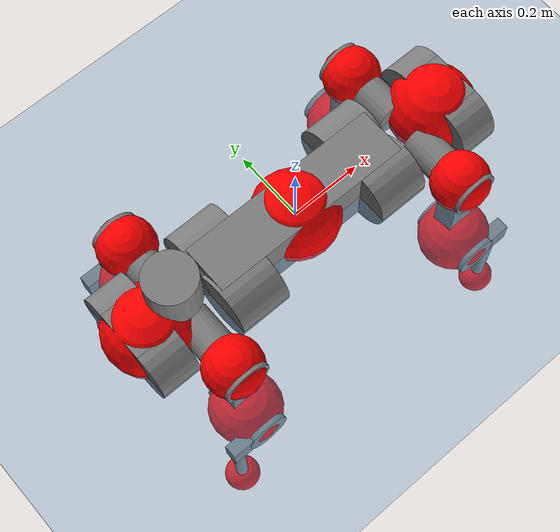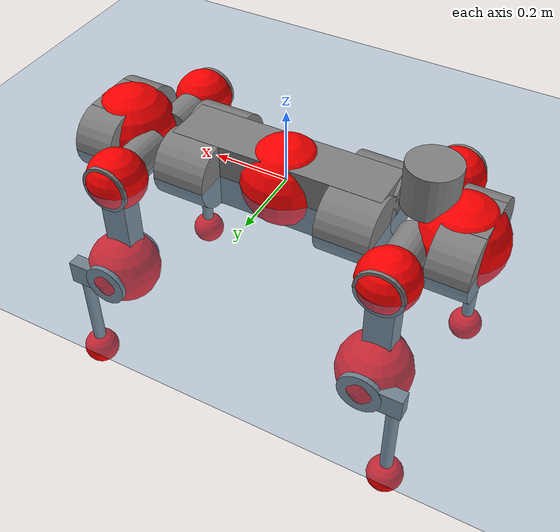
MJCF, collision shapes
<mujoco model="anymal_c">
  <compiler angle="radian" assetdir="assets" balanceinertia="true" inertiafromgeom="false"/>

  <option timestep="0.005" density="1.2" viscosity="2e-05"/>

  <size nkey="1"/>

  <visual>
    <quality shadowsize="8192"/>
    <map shadowclip="0.5"/>
  </visual>

  <default>
    <default class="/">
      <material specular="0" shininess="0.25"/>
      <geom contype="0" conaffinity="0" group="1" solref="-1000 -80"/>
      <site size="0.01 0.005 0.005" group="5"/>
      <general forcelimited="true" forcerange="-80 80" biastype="affine" gainprm="80" biasprm="0 -80 -2"/>
      <default class="anymal_c">
        <joint armature="0.01" damping="0.01" frictionloss="0.1"/>
        <default class="visual">
          <geom type="mesh" group="2"/>
          <default class="visual_zflip"/>
        </default>
        <default class="collision">
          <geom type="cylinder" group="3"/>
          <default class="foot">
            <geom size="0.03 0 0" type="sphere" condim="6" priority="1" friction="0.8 0.02 0.01" solimp="0.015 1 0.03"/>
          </default>
        </default>
      </default>
      <default class="reward_collision_sphere">
        <geom group="5" rgba="1 0 0 1"/>
      </default>
    </default>
  </default>

  <asset>
    <texture type="skybox" colorspace="auto" name="//unnamed_texture_0" builtin="gradient" rgb1="0.95 0.95 0.95" rgb2="0.95 0.95 0.95" width="100" height="600"/>
    <texture type="2d" colorspace="auto" name="texplane" builtin="checker" rgb1="0.345 0.575 0.748" rgb2="0.345 0.575 0.748" markrgb="1 1 1" width="512" height="512"/>
    <texture type="2d" colorspace="linear" name="base" file="base.png"/>
    <texture type="2d" colorspace="linear" name="top_shell" file="top_shell.png"/>
    <texture type="2d" colorspace="linear" name="bottom_shell" file="bottom_shell.png"/>
    <texture type="2d" colorspace="linear" name="remote" file="remote.png"/>
    <texture type="2d" colorspace="linear" name="hatch" file="hatch.png"/>
    <texture type="2d" colorspace="linear" name="handle" file="handle.png"/>
    <texture type="2d" colorspace="linear" name="face" file="face.png"/>
    <texture type="2d" colorspace="linear" name="battery" file="battery.png"/>
    <texture type="2d" colorspace="linear" name="lidar_cage" file="lidar_cage.png"/>
    <texture type="2d" colorspace="linear" name="depth_camera" file="depth_camera.png"/>
    <texture type="2d" colorspace="linear" name="wide_angle_camera" file="wide_angle_camera.png"/>
    <texture type="2d" colorspace="linear" name="lidar" file="lidar.png"/>
    <texture type="2d" colorspace="linear" name="drive" file="drive.png"/>
    <texture type="2d" colorspace="linear" name="hip_l" file="hip_l.png"/>
    <texture type="2d" colorspace="linear" name="shank_l" file="shank_l.png"/>
    <texture type="2d" colorspace="linear" name="foot" file="foot.png"/>
    <texture type="2d" colorspace="linear" name="thigh" file="thigh.png"/>
    <texture type="2d" colorspace="linear" name="shank_r" file="shank_r.png"/>
    <texture type="2d" colorspace="linear" name="hip_r" file="hip_r.png"/>
    <material name="MatPlane" class="/" texture="texplane" texuniform="true" texrepeat="2 2" specular="0.9" shininess="0.5"/>
    <material name="black_plastic" class="/" rgba="0.007 0.007 0.007 1"/>
    <material name="green" class="/" rgba="0.052 0.178 0.033 1"/>
    <material name="red" class="/" rgba="0.178 0.006 0.005 1"/>
    <material name="yellow" class="/" rgba="0.178 0.119 0.006 1"/>
    <material name="lwl" class="/" rgba="0.8 0.8 0.8 1"/>
    <material name="base" class="/" texture="base"/>
    <material name="top_shell" class="/" texture="top_shell"/>
    <material name="bottom_shell" class="/" texture="bottom_shell"/>
    <material name="hip_l" class="/" texture="hip_l"/>
    <material name="thigh" class="/" texture="thigh"/>
    <material name="shank_l" class="/" texture="shank_l"/>
    <material name="foot" class="/" texture="foot"/>
    <material name="hip_r" class="/" texture="hip_r"/>
    <material name="shank" class="/" texture="shank_r"/>
    <material name="hatch" class="/" texture="hatch"/>
    <material name="remote" class="/" texture="remote"/>
    <material name="handle" class="/" texture="handle"/>
    <material name="face" class="/" texture="face"/>
    <material name="depth_camera" class="/" texture="depth_camera"/>
    <material name="wide_angle_camera" class="/" texture="wide_angle_camera"/>
    <material name="battery" class="/" texture="battery"/>
    <material name="lidar_cage" class="/" texture="lidar_cage"/>
    <material name="lidar" class="/" texture="lidar"/>
    <material name="drive" class="/" texture="drive"/>
    <mesh name="base_0" class="/" file="base_0.obj"/>
    <mesh name="base_1" class="/" file="base_1.obj"/>
    <mesh name="base_2" class="/" file="base_2.obj"/>
    <mesh name="base_3" class="/" file="base_3.obj"/>
    <mesh name="base_4" class="/" file="base_4.obj"/>
    <mesh name="base_5" class="/" file="base_5.obj"/>
    <mesh name="top_shell" class="/" file="top_shell.obj"/>
    <mesh name="bottom_shell" class="/" file="bottom_shell.obj"/>
    <mesh name="remote" class="/" file="remote.obj"/>
    <mesh name="handle" class="/" file="handle.obj"/>
    <mesh name="face" class="/" file="face.obj"/>
    <mesh name="wide_angle_camera" class="/" file="wide_angle_camera.obj"/>
    <mesh name="depth_camera" class="/" file="depth_camera.obj"/>
    <mesh name="battery" class="/" file="battery.obj"/>
    <mesh name="lidar_cage" class="/" file="lidar_cage.obj"/>
    <mesh name="lidar" class="/" file="lidar.obj"/>
    <mesh name="drive" class="/" file="drive.obj"/>
    <mesh name="hip_l" class="/" file="hip_l.obj"/>
    <mesh name="thigh" class="/" file="thigh.obj"/>
    <mesh name="shank_l" class="/" file="shank_l.obj"/>
    <mesh name="foot" class="/" file="foot.obj"/>
    <mesh name="hip_r" class="/" file="hip_r.obj"/>
    <mesh name="hatch" class="/" file="hatch.obj"/>
    <mesh name="shank_r" class="/" file="shank_r.obj"/>
  </asset>

  <worldbody>
    <geom name="floor" class="/" size="100 100 0.125" type="plane" group="0" material="MatPlane"/>
    <light name="toplight_shadow" class="/" pos="0 0 5" dir="0.0990148 0.0990148 -0.990148" type="directional" ambient="0.04 0.04 0.04" diffuse="0.55 0.55 0.55" specular="0.12 0.12 0.12"/>
    <light name="toplight_fill" class="/" pos="0 0 5" dir="0.0990148 0.0990148 -0.990148" type="directional" castshadow="false" ambient="0.04 0.04 0.04" diffuse="0.3 0.3 0.3" specular="0.08 0.08 0.08"/>
    <body name="trunk" childclass="anymal_c" pos="2.51288e-05 -4.60095e-06 0.000721076" quat="1 3.2337e-05 2.16863e-05 -7.32957e-05">
      <inertial pos="0.00212031 0.000489751 0.0473912" quat="0.499917 0.500091 0.49996 0.500033" mass="18.2627" diaginertia="0.72831 0.449228 0.198059"/>
      <joint name="//unnamed_joint_0" type="free" armature="0" damping="0" frictionloss="0"/>
      <geom name="//unnamed_geom_1" class="visual" material="green" mesh="base_0"/>
      <geom name="//unnamed_geom_2" class="visual" material="yellow" mesh="base_1"/>
      <geom name="//unnamed_geom_3" class="visual" material="red" mesh="base_2"/>
      <geom name="//unnamed_geom_4" class="visual" material="black_plastic" mesh="base_3"/>
      <geom name="//unnamed_geom_5" class="visual" material="lwl" mesh="base_4"/>
      <geom name="//unnamed_geom_6" class="visual" material="base" mesh="base_5"/>
      <geom name="trunk_1" class="collision" size="0.284052 0.0685644 0.0881542" type="box"/>
      <geom name="trunk_2" class="collision" size="0.0881542 0.0710131" pos="0.222787 0.0654588 0" quat="0.707107 0 0.707107 0"/>
      <geom name="trunk_3" class="collision" size="0.0881542 0.0710131" pos="-0.222787 0.0654588 0" quat="0.707107 0 0.707107 0"/>
      <geom name="trunk_4" class="collision" size="0.0881542 0.0710131" pos="0.222787 -0.0654588 0" quat="0.707107 0 0.707107 0"/>
      <geom name="trunk_5" class="collision" size="0.0881542 0.0710131" pos="-0.222787 -0.0654588 0" quat="0.707107 0 0.707107 0"/>
      <geom name="//unnamed_geom_12" class="visual" material="top_shell" mesh="top_shell"/>
      <geom name="//unnamed_geom_13" class="visual" material="bottom_shell" mesh="bottom_shell"/>
      <geom name="//unnamed_geom_14" class="visual" material="remote" mesh="remote"/>
      <geom name="//unnamed_geom_15" class="visual" material="handle" mesh="handle"/>
      <geom name="//unnamed_geom_16" class="visual" pos="0.424576 0 0" quat="1 0 0 0" material="face" mesh="face"/>
      <geom name="trunk_6" class="collision" size="0.053872 0.0685644 0.0881542" pos="0.480913 0 0" type="box"/>
      <geom name="//unnamed_geom_18" class="collision" size="0.0881542 0.053872" pos="0.480913 0.0654588 0" quat="0.707107 0 0.707107 0"/>
      <geom name="//unnamed_geom_19" class="collision" size="0.0881542 0.053872" pos="0.480913 -0.0654588 0" quat="0.707107 0 0.707107 0"/>
      <geom name="//unnamed_geom_20" class="visual" pos="0.47287 0 -0.0282438" quat="0.965926 0 0.258819 0" material="depth_camera" mesh="depth_camera"/>
      <geom name="//unnamed_geom_21" class="visual" pos="0.525471 0 0.0146562" material="wide_angle_camera" mesh="wide_angle_camera"/>
      <geom name="//unnamed_geom_22" class="visual_zflip" pos="-0.424576 0 0" quat="0 0 0 1" material="face" mesh="face"/>
      <geom name="trunk_7" class="collision" size="0.053872 0.0685644 0.0881542" pos="-0.480913 0 0" quat="0 0 0 1" type="box"/>
      <geom name="//unnamed_geom_24" class="collision" size="0.0881542 0.053872" pos="-0.480913 -0.0654588 0" quat="0 -0.707107 0 0.707107"/>
      <geom name="//unnamed_geom_25" class="collision" size="0.0881542 0.053872" pos="-0.480913 0.0654588 0" quat="0 -0.707107 0 0.707107"/>
      <geom name="//unnamed_geom_26" class="visual" pos="-0.47287 0 -0.0282438" quat="0 -0.258819 0 0.965926" material="depth_camera" mesh="depth_camera"/>
      <geom name="//unnamed_geom_27" class="visual_zflip" pos="-0.525471 0 0.0146562" quat="0 0 0 1" material="wide_angle_camera" mesh="wide_angle_camera"/>
      <geom name="//unnamed_geom_28" class="visual" material="battery" mesh="battery"/>
      <geom name="//unnamed_geom_29" class="visual" pos="0 0.0703276 0.0287851" quat="0.683013 -0.183013 0.183013 0.683013" material="depth_camera" mesh="depth_camera"/>
      <geom name="//unnamed_geom_30" class="visual" pos="0 -0.0703276 0.0287851" quat="0.683013 0.183013 0.183013 -0.683013" material="depth_camera" mesh="depth_camera"/>
      <geom name="//unnamed_geom_31" class="visual" pos="-0.372848 0 0.0719593" quat="1 0 0 0" material="lidar_cage" mesh="lidar_cage"/>
      <geom name="trunk_8" class="collision" size="0.0685644 0.0587695" pos="-0.372848 0 0.130702"/>
      <geom name="//unnamed_geom_33" class="visual" pos="-0.372848 -3.50376e-05 0.139219" quat="0.707107 0 0 -0.707107" material="lidar" mesh="lidar"/>
      <geom name="//unnamed_geom_34" class="visual" pos="0.30719 0.0972687 -7.57484e-10" quat="0.258819 0.965926 0 0" material="drive" mesh="drive"/>
      <geom name="//unnamed_geom_35" class="visual" pos="0.30719 -0.0972687 7.57484e-10" quat="0.258819 -0.965926 0 0" material="drive" mesh="drive"/>
      <geom name="//unnamed_geom_36" class="visual" pos="-0.30719 0.0972687 7.57484e-10" quat="0 0 0.965926 -0.258819" material="drive" mesh="drive"/>
      <geom name="//unnamed_geom_37" class="visual" pos="-0.30719 -0.0972687 -7.57484e-10" quat="0 0 -0.965926 -0.258819" material="drive" mesh="drive"/>
      <geom name="//unnamed_geom_38" class="visual" pos="0.11882 0 0.0714698" quat="1 0 0 0" material="hatch" mesh="hatch"/>
      <geom name="//unnamed_geom_39" class="reward_collision_sphere" size="0.117539"/>
      <geom name="//unnamed_geom_40" class="reward_collision_sphere" size="0.117539" pos="0.460939 0 0"/>
      <geom name="//unnamed_geom_41" class="reward_collision_sphere" size="0.117539" pos="-0.460939 0 0"/>
      <site name="imu" pos="0.253915 0.0123994 0.0435632" size="0.00979491"/>
      <camera name="track" pos="0 -1.87025 0" quat="0.707107 0.707107 0 0" mode="trackcom"/>
      <camera name="ego_camera" pos="0.460939 0 -0.0391615" quat="-0.5 -0.5 0.5 0.5"/>
      <body name="LF_HIP" pos="0.307519 0.0979774 0.00043469" quat="0.258823 0.965925 -4.45147e-05 -3.20495e-05">
        <inertial pos="0.0581185 -0.0140047 -0.00709883" quat="-0.126367 0.710449 -0.134791 0.679061" mass="2.5989" diaginertia="0.00659761 0.00355052 0.00292055"/>
        <joint name="LF_HAA" pos="0 0 0" axis="0.999999 -0.0008178 -0.00124021" range="-0.707215 0.490625" armature="0.00936555" damping="0.00564975" frictionloss="0.0987544"/>
        <geom name="//unnamed_geom_42" class="visual" pos="0 -4.45593e-05 7.31883e-06" quat="0.258819 -0.965926 0 0" material="hip_l" mesh="hip_l"/>
        <geom name="//unnamed_geom_43" class="visual" pos="0.0613561 -0.0731874 -0.0425795" quat="0.183013 -0.683013 0.683013 0.183013" material="drive" mesh="drive"/>
        <geom name="//unnamed_geom_44" class="collision" size="0.0489746 0.0685644" pos="0.0613561 -0.0111839 -0.00676026" quat="-0.353553 -0.612372 0.612372 -0.353553"/>
        <body name="LF_THIGH" pos="0.0616289 -0.0680827 -0.0416206" quat="0.182969 -0.682945 0.683122 0.182901">
          <inertial pos="0.0317964 3.30907e-05 -0.239571" quat="0.993006 -0.00496716 -0.0817652 0.0850274" mass="2.89163" diaginertia="0.0342525 0.0212039 0.0037104"/>
          <joint name="LF_HFE" pos="0 0 0" axis="0.999999 0.000955343 -0.000502549" stiffness="0.00700533" range="-3.12732 3.12562" armature="0.00999917" damping="0.00826673" frictionloss="0.0979208"/>
          <geom name="//unnamed_geom_45" class="visual" pos="0.00177439 2.79602e-06 0" quat="0.707107 0 0 -0.707107" material="thigh" mesh="thigh"/>
          <geom name="//unnamed_geom_46" class="collision" size="0.0636669 0.0391796" pos="0.0409724 0 0" quat="0.5 0.5 -0.5 -0.5"/>
          <geom name="//unnamed_geom_47" class="collision" size="0.0367309 0.0293847 0.138416" pos="0.0307293 0 -0.138352" quat="0.707107 0 0 -0.707107" type="box"/>
          <geom name="//unnamed_geom_48" class="visual" pos="0.102738 0 -0.279026" quat="1 0 0 0" material="drive" mesh="drive"/>
          <geom name="//unnamed_geom_49" class="collision" size="0.0489746 0.0685644" pos="0.0310366 0 -0.279026" quat="0.707107 0 0.707107 0"/>
          <geom name="//unnamed_geom_50" class="reward_collision_sphere" size="0.0783593" pos="0.0256077 0 0"/>
          <body name="LF_SHANK" pos="0.102812 -0.00116349 -0.279899" quat="1 4.36497e-05 -0.000148892 0.000249142">
            <inertial pos="0.00584938 -0.0572715 -0.0788786" quat="0.992933 -0.115907 -0.00104914 -0.0254623" mass="0.559127" diaginertia="0.0114712 0.00659226 0.00101088"/>
            <joint name="LF_KFE" pos="0 0 0" axis="0.999987 0.00368317 -0.00353844" range="-3.13582 3.12942" armature="0.00996169" damping="0.00756782" frictionloss="0.10142"/>
            <geom name="//unnamed_geom_51" class="visual" pos="0.00057859 0.00308507 0" quat="0.707107 0 0 -0.707107" material="shank_l" mesh="shank_l"/>
            <geom name="LF_kfe_act" class="collision" size="0.0587695 0.0195898" pos="0.0204862 0 0" quat="0.5 0.5 -0.5 -0.5"/>
            <geom name="//unnamed_geom_53" class="collision" size="0.0563198 0.0330578 0.0186103" pos="0.0204862 -0.0537688 0" quat="0.5 0.5 -0.5 -0.5" type="box"/>
            <geom name="//unnamed_geom_54" class="visual" pos="0.0133671 -0.0812501 -0.330885" quat="0.382683 0 0 -0.92388" material="foot" mesh="foot"/>
            <geom name="LF_calf" class="collision" size="0.0171411 0.138355" pos="0.0133672 -0.0822443 -0.165443" quat="0.707107 0 0 -0.707107"/>
            <geom name="LF_foot" class="foot" size="0.0305046" pos="0.0133672 -0.0822443 -0.308857" quat="0.707107 0 0 -0.707107"/>
            <geom name="//unnamed_geom_57" class="reward_collision_sphere" size="0.0979491" pos="-0.0512155 0 0"/>
            <geom name="//unnamed_geom_58" class="reward_collision_sphere" size="0.0489746" pos="0.0133672 -0.0822443 -0.308857"/>
            <site name="LF_foot" class="foot" pos="0.0133672 -0.0822443 -0.308857" quat="0.707107 0 0 -0.707107" size="0.00979491"/>
          </body>
        </body>
      </body>
      <body name="RF_HIP" pos="0.307338 -0.0968784 0.000459105" quat="0.259068 -0.965859 2.54557e-05 0.000124329">
        <inertial pos="0.0581352 0.0151594 -0.00870336" quat="0.135547 0.678944 0.127666 0.710185" mass="2.60771" diaginertia="0.00660831 0.00354416 0.00296126"/>
        <joint name="RF_HAA" pos="0 0 0" axis="1 0.000481063 -0.000245207" stiffness="3.96557e-05" range="-0.502778 0.714163" armature="0.0097377" damping="0.0110088" frictionloss="0.102308"/>
        <geom name="//unnamed_geom_59" class="visual" pos="0 4.4559e-05 7.31881e-06" quat="0.258819 0.965926 0 0" material="hip_r" mesh="hip_r"/>
        <geom name="//unnamed_geom_60" class="visual" pos="0.0613561 0.0731874 -0.0425795" quat="0.183013 0.683013 0.683013 -0.183013" material="drive" mesh="drive"/>
        <geom name="//unnamed_geom_61" class="collision" size="0.0489746 0.0685644" pos="0.0613561 0.0111839 -0.00676026" quat="-0.353553 0.612372 0.612372 0.353553"/>
        <body name="RF_THIGH" pos="0.0627247 0.067063 -0.0416026" quat="0.182964 0.683136 0.682924 -0.182933">
          <inertial pos="0.0315207 -0.000387791 -0.240253" quat="0.992777 -0.00508934 -0.0806859 0.0886441" mass="2.95549" diaginertia="0.0343825 0.021836 0.00383913"/>
          <joint name="RF_HFE" pos="0 0 0" axis="0.999992 0.00332759 0.002314" stiffness="0.00561886" range="-3.11959 3.13071" armature="0.0098098" damping="0.00891506" frictionloss="0.0958114"/>
          <geom name="//unnamed_geom_62" class="visual" pos="0.00177439 2.79602e-06 0" quat="0.707107 0 0 -0.707107" material="thigh" mesh="thigh"/>
          <geom name="//unnamed_geom_63" class="collision" size="0.0636669 0.0391796" pos="0.0409724 0 0" quat="0.5 0.5 0.5 0.5"/>
          <geom name="//unnamed_geom_64" class="collision" size="0.0367309 0.0293847 0.138416" pos="0.0307293 0 -0.138352" quat="0.707107 0 0 0.707107" type="box"/>
          <geom name="//unnamed_geom_65" class="visual" pos="0.102738 0 -0.279026" quat="1 0 0 0" material="drive" mesh="drive"/>
          <geom name="//unnamed_geom_66" class="collision" size="0.0489746 0.0685644" pos="0.0310366 0 -0.279026" quat="0.707107 0 0.707107 0"/>
          <geom name="//unnamed_geom_67" class="reward_collision_sphere" size="0.0783593" pos="0.0256077 0 0"/>
          <body name="RF_SHANK" pos="0.102874 0.000509951 -0.279541" quat="1 3.7726e-05 -0.000200816 -0.000117387">
            <inertial pos="0.0060899 0.0568686 -0.077818" quat="0.993017 0.11527 -0.000882326 0.0250881" mass="0.543634" diaginertia="0.0113185 0.00660722 0.00100658"/>
            <joint name="RF_KFE" pos="0 0 0" axis="0.99996 0.00408316 0.00801735" stiffness="0.00100922" range="-3.13514 3.13978" armature="0.00985238" damping="0.0100073" frictionloss="0.0922373"/>
            <geom name="//unnamed_geom_68" class="visual" pos="0.000578586 -0.00308506 0" quat="0.707107 0 0 0.707107" material="shank" mesh="shank_r"/>
            <geom name="RF_kfe_act" class="collision" size="0.0587695 0.0195898" pos="0.0204862 0 0" quat="0.5 0.5 0.5 0.5"/>
            <geom name="//unnamed_geom_70" class="collision" size="0.0563198 0.0330578 0.0186103" pos="0.0204862 0.0537688 0" quat="0.5 0.5 0.5 0.5" type="box"/>
            <geom name="//unnamed_geom_71" class="visual" pos="0.0133674 0.0812501 -0.330885" quat="0.382683 0 0 0.92388" material="foot" mesh="foot"/>
            <geom name="RF_calf" class="collision" size="0.0171411 0.138355" pos="0.0133672 0.0822443 -0.165443" quat="0.707107 0 0 0.707107"/>
            <geom name="RF_foot" class="foot" size="0.0300957" pos="0.0133672 0.0822443 -0.308857" quat="0.707107 0 0 0.707107"/>
            <geom name="//unnamed_geom_74" class="reward_collision_sphere" size="0.0979491" pos="-0.0512155 0 0"/>
            <geom name="//unnamed_geom_75" class="reward_collision_sphere" size="0.0489746" pos="0.0133672 0.0822443 -0.308857"/>
            <site name="RF_foot" class="foot" pos="0.0133672 0.0822443 -0.308857" quat="0.707107 0 0 0.707107" size="0.00979491"/>
          </body>
        </body>
      </body>
      <body name="LH_HIP" pos="-0.307236 0.097375 0.000234178" quat="5.9754e-05 -4.39121e-05 0.965906 -0.258893">
        <inertial pos="0.0589932 0.0141215 -0.00772107" quat="0.135066 0.683306 0.130849 0.705499" mass="2.57229" diaginertia="0.00659668 0.00348146 0.00298582"/>
        <joint name="LH_HAA" pos="0 0 0" axis="0.999988 -0.00184297 0.00464216" range="-0.484246 0.73767" armature="0.00979988" damping="0.0132708" frictionloss="0.0937076"/>
        <geom name="//unnamed_geom_76" class="visual" pos="0 4.4559e-05 7.31881e-06" quat="-0.258819 -0.965926 0 0" material="hip_r" mesh="hip_r"/>
        <geom name="//unnamed_geom_77" class="visual" pos="0.0613561 0.0731874 -0.0425795" quat="0.183013 0.683013 0.683013 -0.183013" material="drive" mesh="drive"/>
        <geom name="//unnamed_geom_78" class="collision" size="0.0489746 0.0685644" pos="0.0613561 0.0111839 -0.00676026" quat="-0.353553 0.612372 0.612372 0.353553"/>
        <body name="LH_THIGH" pos="0.0608656 0.0684724 -0.0416174" quat="0.182781 0.682883 0.683178 -0.183111">
          <inertial pos="0.0317447 0.000644594 -0.24034" quat="0.992813 -0.00351915 -0.0794636 0.0894173" mass="2.91364" diaginertia="0.0341002 0.0217512 0.00374754"/>
          <joint name="LH_HFE" pos="0 0 0" axis="0.999999 -0.00098681 -0.000563826" range="-3.14412 3.13919" armature="0.00982067" damping="0.00560157" frictionloss="0.0983943"/>
          <geom name="//unnamed_geom_79" class="visual" pos="0.00177439 2.79602e-06 0" quat="0.707107 0 0 -0.707107" material="thigh" mesh="thigh"/>
          <geom name="//unnamed_geom_80" class="collision" size="0.0636669 0.0391796" pos="0.0409724 0 0" quat="0.5 0.5 -0.5 -0.5"/>
          <geom name="//unnamed_geom_81" class="collision" size="0.0367309 0.0293847 0.138416" pos="0.0307293 0 -0.138352" quat="0.707107 0 0 -0.707107" type="box"/>
          <geom name="//unnamed_geom_82" class="visual" pos="0.102738 0 -0.279026" quat="1 0 0 0" material="drive" mesh="drive"/>
          <geom name="//unnamed_geom_83" class="collision" size="0.0489746 0.0685644" pos="0.0310366 0 -0.279026" quat="0.707107 0 0.707107 0"/>
          <geom name="//unnamed_geom_84" class="reward_collision_sphere" size="0.0783593" pos="0.0256077 0 0"/>
          <body name="LH_SHANK" pos="0.102687 -0.000478373 -0.279396" quat="1 0.000120206 -8.35546e-05 0.000246795">
            <inertial pos="0.00512986 0.0574061 -0.0781191" quat="0.992938 0.115883 -0.00104308 0.0253941" mass="0.561337" diaginertia="0.0116543 0.00674828 0.00104128"/>
            <joint name="LH_KFE" pos="0 0 0" axis="0.999994 0.00136765 0.0032879" range="-3.14391 3.11245" armature="0.00988587" damping="0.00633605" frictionloss="0.0940049"/>
            <geom name="//unnamed_geom_85" class="visual" pos="0.000578586 -0.00308506 0" quat="-0.707107 0 0 -0.707107" material="shank" mesh="shank_r"/>
            <geom name="LH_kfe_act" class="collision" size="0.0587695 0.0195898" pos="0.0204862 0 0" quat="0.5 0.5 -0.5 -0.5"/>
            <geom name="//unnamed_geom_87" class="collision" size="0.0563198 0.0330578 0.0186103" pos="0.0204862 0.0537688 0" quat="0.5 0.5 -0.5 -0.5" type="box"/>
            <geom name="//unnamed_geom_88" class="visual" pos="0.0133674 0.0812501 -0.330885" quat="-0.382683 0 0 -0.92388" material="foot" mesh="foot"/>
            <geom name="LH_calf" class="collision" size="0.0171411 0.138355" pos="0.0133672 0.0822443 -0.165443" quat="0.707107 0 0 -0.707107"/>
            <geom name="LH_foot" class="foot" size="0.0298726" pos="0.0133672 0.0822443 -0.308857" quat="0.707107 0 0 -0.707107"/>
            <geom name="//unnamed_geom_91" class="reward_collision_sphere" size="0.0979491" pos="-0.0512155 0 0"/>
            <geom name="//unnamed_geom_92" class="reward_collision_sphere" size="0.0489746" pos="0.0133672 0.0822443 -0.308857"/>
            <site name="LH_foot" class="foot" pos="0.0133672 0.0822443 -0.308857" quat="0.707107 0 0 -0.707107" size="0.00979491"/>
          </body>
        </body>
      </body>
      <body name="RH_HIP" pos="-0.307322 -0.0979098 0.000839818" quat="-4.56325e-05 -4.82007e-06 -0.965915 -0.258859">
        <inertial pos="0.0585193 -0.0152088 -0.00758064" quat="-0.127639 0.709638 -0.140893 0.678433" mass="2.63275" diaginertia="0.00659948 0.00359194 0.00298772"/>
        <joint name="RH_HAA" pos="0 0 0" axis="1 -0.000487059 0.000848478" stiffness="0.000436243" range="-0.723439 0.498128" armature="0.00973546" damping="0.00932368" frictionloss="0.0935307"/>
        <geom name="//unnamed_geom_93" class="visual" pos="0 -4.45593e-05 7.31883e-06" quat="-0.258819 0.965926 0 0" material="hip_l" mesh="hip_l"/>
        <geom name="//unnamed_geom_94" class="visual" pos="0.0613561 -0.0731874 -0.0425795" quat="-0.183013 0.683013 -0.683013 -0.183013" material="drive" mesh="drive"/>
        <geom name="//unnamed_geom_95" class="collision" size="0.0489746 0.0685644" pos="0.0613561 -0.0111839 -0.00676026" quat="0.353553 0.612372 -0.612372 0.353553"/>
        <body name="RH_THIGH" pos="0.0609547 -0.0680552 -0.0422539" quat="-0.183015 0.683012 -0.683012 -0.183013">
          <inertial pos="0.0318012 0.00116685 -0.2413" quat="0.993246 -0.00431109 -0.0814862 0.0824845" mass="2.84655" diaginertia="0.0337163 0.0210458 0.00370881"/>
          <joint name="RH_HFE" pos="0 0 0" axis="0.99999 -0.0035908 -0.00256322" range="-3.15204 3.1362" armature="0.0104135" damping="0.00802088" frictionloss="0.0980794"/>
          <geom name="//unnamed_geom_96" class="visual" pos="0.00177439 2.79602e-06 0" quat="0.707107 0 0 -0.707107" material="thigh" mesh="thigh"/>
          <geom name="//unnamed_geom_97" class="collision" size="0.0636669 0.0391796" pos="0.0409724 0 0" quat="0.5 0.5 0.5 0.5"/>
          <geom name="//unnamed_geom_98" class="collision" size="0.0367309 0.0293847 0.138416" pos="0.0307293 0 -0.138352" quat="0.707107 0 0 0.707107" type="box"/>
          <geom name="//unnamed_geom_99" class="visual" pos="0.102738 0 -0.279026" quat="1 0 0 0" material="drive" mesh="drive"/>
          <geom name="//unnamed_geom_100" class="collision" size="0.0489746 0.0685644" pos="0.0310366 0 -0.279026" quat="0.707107 0 0.707107 0"/>
          <geom name="//unnamed_geom_101" class="reward_collision_sphere" size="0.0783593" pos="0.0256077 0 0"/>
          <body name="RH_SHANK" pos="0.103118 0.000977052 -0.279335" quat="1 -8.55808e-05 -0.000233479 -7.2136e-05">
            <inertial pos="0.00483293 -0.0573721 -0.0788602" quat="0.992974 -0.115403 -0.00491769 -0.0257151" mass="0.556609" diaginertia="0.011656 0.00667099 0.00103343"/>
            <joint name="RH_KFE" pos="0 0 0" axis="0.999994 -0.000250131 0.00337735" range="-3.13012 3.13825" armature="0.00992904" damping="0.00852056" frictionloss="0.0998498"/>
            <geom name="//unnamed_geom_102" class="visual" pos="0.00057859 0.00308507 0" quat="0.707107 0 0 -0.707107" material="shank_l" mesh="shank_l"/>
            <geom name="RH_kfe_act" class="collision" size="0.0587695 0.0195898" pos="0.0204862 0 0" quat="0.5 0.5 0.5 0.5"/>
            <geom name="//unnamed_geom_104" class="collision" size="0.0563198 0.0330578 0.0186103" pos="0.0204862 -0.0537688 0" quat="0.5 0.5 0.5 0.5" type="box"/>
            <geom name="//unnamed_geom_105" class="visual" pos="0.0133671 -0.0812501 -0.330885" quat="0.382683 0 0 -0.92388" material="foot" mesh="foot"/>
            <geom name="RH_calf" class="collision" size="0.0171411 0.138355" pos="0.0133672 -0.0822443 -0.165443" quat="0.707107 0 0 0.707107"/>
            <geom name="RH_foot" class="foot" size="0.0259552" pos="0.0133672 -0.0822443 -0.308857" quat="0.707107 0 0 0.707107"/>
            <geom name="//unnamed_geom_108" class="reward_collision_sphere" size="0.0979491" pos="-0.0512155 0 0"/>
            <geom name="//unnamed_geom_109" class="reward_collision_sphere" size="0.0489746" pos="0.0133672 -0.0822443 -0.308857"/>
            <site name="RH_foot" class="foot" pos="0.0133672 -0.0822443 -0.308857" quat="0.707107 0 0 0.707107" size="0.00979491"/>
          </body>
        </body>
      </body>
    </body>
  </worldbody>

  <contact>
    <pair class="/" geom1="floor" geom2="LF_foot" name="//unnamed_contact_0"/>
    <pair class="/" geom1="floor" geom2="RF_foot" name="//unnamed_contact_1"/>
    <pair class="/" geom1="floor" geom2="LH_foot" name="//unnamed_contact_2"/>
    <pair class="/" geom1="floor" geom2="RH_foot" name="//unnamed_contact_3"/>
  </contact>

  <actuator>
    <general name="LF_HAA" class="/" joint="LF_HAA" forcerange="-81.6751 81.6751" gainprm="79.6189" biasprm="0 -79.6189 -1.89622"/>
    <general name="LF_HFE" class="/" joint="LF_HFE" forcerange="-75.1891 75.1891" gainprm="79.6189" biasprm="0 -79.6189 -1.89622"/>
    <general name="LF_KFE" class="/" joint="LF_KFE" forcerange="-79.5926 79.5926" gainprm="79.6189" biasprm="0 -79.6189 -1.89622"/>
    <general name="RF_HAA" class="/" joint="RF_HAA" forcerange="-78.1806 78.1806" gainprm="79.6189" biasprm="0 -79.6189 -1.89622"/>
    <general name="RF_HFE" class="/" joint="RF_HFE" forcerange="-77.819 77.819" gainprm="79.6189" biasprm="0 -79.6189 -1.89622"/>
    <general name="RF_KFE" class="/" joint="RF_KFE" forcerange="-80.5155 80.5155" gainprm="79.6189" biasprm="0 -79.6189 -1.89622"/>
    <general name="LH_HAA" class="/" joint="LH_HAA" forcerange="-76.3824 76.3824" gainprm="79.6189" biasprm="0 -79.6189 -1.89622"/>
    <general name="LH_HFE" class="/" joint="LH_HFE" forcerange="-78.6504 78.6504" gainprm="79.6189" biasprm="0 -79.6189 -1.89622"/>
    <general name="LH_KFE" class="/" joint="LH_KFE" forcerange="-81.4251 81.4251" gainprm="79.6189" biasprm="0 -79.6189 -1.89622"/>
    <general name="RH_HAA" class="/" joint="RH_HAA" forcerange="-75.914 75.914" gainprm="79.6189" biasprm="0 -79.6189 -1.89622"/>
    <general name="RH_HFE" class="/" joint="RH_HFE" forcerange="-77.427 77.427" gainprm="79.6189" biasprm="0 -79.6189 -1.89622"/>
    <general name="RH_KFE" class="/" joint="RH_KFE" forcerange="-77.1044 77.1044" gainprm="79.6189" biasprm="0 -79.6189 -1.89622"/>
  </actuator>

  <sensor>
    <gyro site="imu" name="imu_angular_velocity"/>
    <velocimeter site="imu" name="imu_linear_velocity"/>
    <framelinvel objtype="site" objname="LF_foot" name="LF_foot_global_linear_velocity"/>
    <framelinvel objtype="site" objname="RF_foot" name="RF_foot_global_linear_velocity"/>
    <framelinvel objtype="site" objname="LH_foot" name="LH_foot_global_linear_velocity"/>
    <framelinvel objtype="site" objname="RH_foot" name="RH_foot_global_linear_velocity"/>
  </sensor>

  <keyframe>
    <key name="home" qpos="0 0 0.55 1 0 0 0 0 0.4 -0.8 0 -0.4 0.8 0 -0.4 0.8 0 0.4 -0.8"/>
  </keyframe>
</mujoco>
